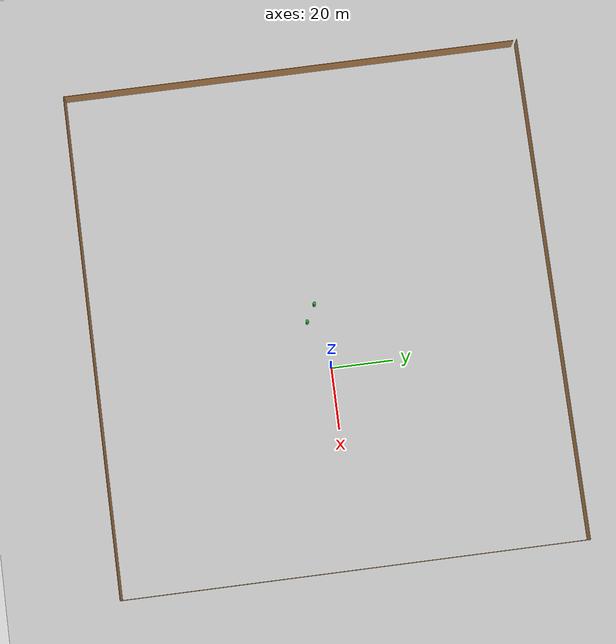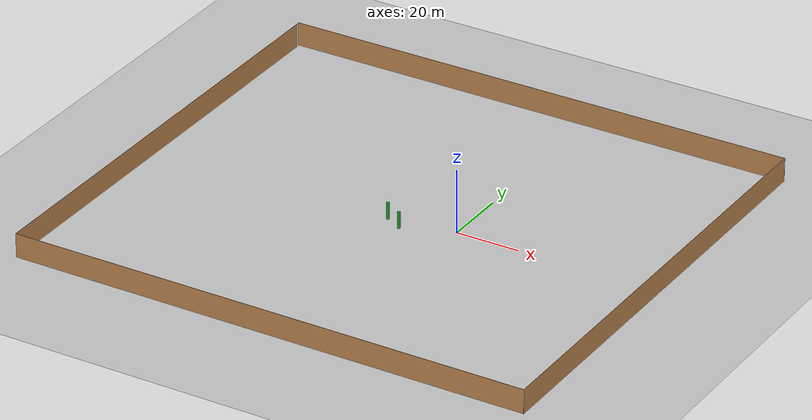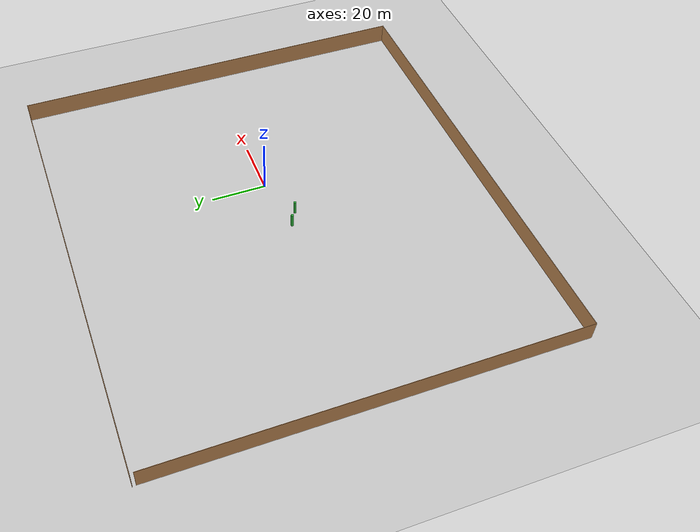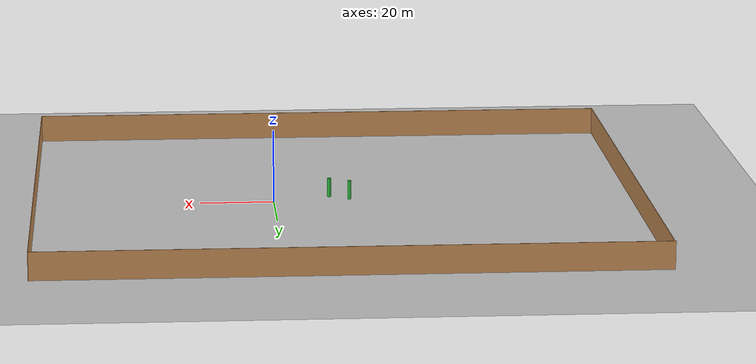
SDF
<sdf version="1.7">
 <world name="default">
  <model name="ground_plane">
   <static>1</static>
   <link name="link">
    <collision name="collision">
     <geometry><plane><normal>0 0 1</normal><size>100 100</size></plane></geometry>
     <surface>
      <contact><collide_bitmask>65535</collide_bitmask></contact>
      <friction><ode><mu>100</mu><mu2>50</mu2></ode></friction>
     </surface>
    </collision>
    <visual name="visual">
     <cast_shadows>0</cast_shadows>
     <geometry><plane><normal>0 0 1</normal><size>100 100</size></plane></geometry>
     <material>
      <script><uri>file://media/materials/scripts/gazebo.material</uri><name>Gazebo/Grey</name></script>
     </material>
    </visual>
   </link>
  </model>
  <model name="unit_cylinder_green_2_clone_0">
   <link name="link">
    <inertial>
     <mass>1</mass>
     <inertia><ixx>0.145833</ixx><ixy>0</ixy><ixz>0</ixz><iyy>0.145833</iyy><iyz>0</iyz><izz>0.125</izz></inertia>
    </inertial>
    <visual name="visual">
     <geometry><cylinder><radius>0.5</radius><length>10</length></cylinder></geometry>
     <material>
      <script><name>Gazebo/Green</name><uri>file://media/materials/scripts/gazebo.material</uri></script>
      <shader type="pixel"><normal_map>__default__</normal_map></shader>
      <ambient>0 1 0.3 1</ambient>
      <diffuse>0.7 0.7 0.7 1</diffuse>
      <specular>0.01 0.01 0.01 1</specular>
      <emissive>0 0 0 1</emissive>
     </material>
    </visual>
    <collision name="collision">
     <geometry><cylinder><radius>0.5</radius><length>5</length></cylinder></geometry>
     <surface>
      <friction>
       <ode><mu>1</mu><mu2>1</mu2><fdir1>0 0 0</fdir1><slip1>0</slip1><slip2>0</slip2></ode>
       <torsional>
        <coefficient>1</coefficient>
        <patch_radius>0</patch_radius>
        <surface_radius>0</surface_radius>
        <use_patch_radius>1</use_patch_radius>
        <ode><slip>0</slip></ode>
       </torsional>
      </friction>
      <bounce><restitution_coefficient>0</restitution_coefficient><threshold>1e+06</threshold></bounce>
      <contact>
       <collide_without_contact>0</collide_without_contact>
       <collide_without_contact_bitmask>1</collide_without_contact_bitmask>
       <collide_bitmask>1</collide_bitmask>
       <ode>
        <soft_cfm>0</soft_cfm>
        <soft_erp>0.2</soft_erp>
        <kp>1e+13</kp>
        <kd>1</kd>
        <max_vel>0.01</max_vel>
        <min_depth>0</min_depth>
       </ode>
       <bullet>
        <split_impulse>1</split_impulse>
        <split_impulse_penetration_threshold>-0.01</split_impulse_penetration_threshold>
        <soft_cfm>0</soft_cfm>
        <soft_erp>0.2</soft_erp>
        <kp>1e+13</kp>
        <kd>1</kd>
       </bullet>
      </contact>
     </surface>
    </collision>
   </link>
   <static>1</static>
   <pose>-15.5271 -5.75349 0 0 -0 0</pose>
  </model>
  <model name="unit_cylinder_green_2_clone_1">
   <link name="link">
    <inertial>
     <mass>1</mass>
     <inertia><ixx>0.145833</ixx><ixy>0</ixy><ixz>0</ixz><iyy>0.145833</iyy><iyz>0</iyz><izz>0.125</izz></inertia>
    </inertial>
    <visual name="visual">
     <geometry><cylinder><radius>0.5</radius><length>10</length></cylinder></geometry>
     <material>
      <script><name>Gazebo/Green</name><uri>file://media/materials/scripts/gazebo.material</uri></script>
      <shader type="pixel"><normal_map>__default__</normal_map></shader>
      <ambient>0 1 0.3 1</ambient>
      <diffuse>0.7 0.7 0.7 1</diffuse>
      <specular>0.01 0.01 0.01 1</specular>
      <emissive>0 0 0 1</emissive>
     </material>
    </visual>
    <collision name="collision">
     <geometry><cylinder><radius>0.5</radius><length>5</length></cylinder></geometry>
     <surface>
      <friction>
       <ode><mu>1</mu><mu2>1</mu2><fdir1>0 0 0</fdir1><slip1>0</slip1><slip2>0</slip2></ode>
       <torsional>
        <coefficient>1</coefficient>
        <patch_radius>0</patch_radius>
        <surface_radius>0</surface_radius>
        <use_patch_radius>1</use_patch_radius>
        <ode><slip>0</slip></ode>
       </torsional>
      </friction>
      <bounce><restitution_coefficient>0</restitution_coefficient><threshold>1e+06</threshold></bounce>
      <contact>
       <collide_without_contact>0</collide_without_contact>
       <collide_without_contact_bitmask>1</collide_without_contact_bitmask>
       <collide_bitmask>1</collide_bitmask>
       <ode>
        <soft_cfm>0</soft_cfm>
        <soft_erp>0.2</soft_erp>
        <kp>1e+13</kp>
        <kd>1</kd>
        <max_vel>0.01</max_vel>
        <min_depth>0</min_depth>
       </ode>
       <bullet>
        <split_impulse>1</split_impulse>
        <split_impulse_penetration_threshold>-0.01</split_impulse_penetration_threshold>
        <soft_cfm>0</soft_cfm>
        <soft_erp>0.2</soft_erp>
        <kp>1e+13</kp>
        <kd>1</kd>
       </bullet>
      </contact>
     </surface>
    </collision>
   </link>
   <static>1</static>
   <pose>-20.9276 -2.72984 0 0 -0 0</pose>
  </model>
  <model name="Untitled">
   <pose>-16.7345 -0.621261 0 0 -0 0</pose>
   <link name="Wall_3">
    <collision name="Wall_3_Collision">
     <geometry><box><size>147.5 0.15 7.5</size></box></geometry>
     <pose>0 0 3.75 0 -0 0</pose>
    </collision>
    <visual name="Wall_3_Visual">
     <pose>0 0 3.75 0 -0 0</pose>
     <geometry><box><size>147.5 0.15 7.5</size></box></geometry>
     <material>
      <script><uri>file://media/materials/scripts/gazebo.material</uri><name>Gazebo/Wood</name></script>
      <ambient>1 1 1 1</ambient>
     </material>
     <meta><layer>0</layer></meta>
    </visual>
    <pose>-81.3 -0.624998 0 0 -0 -1.5708</pose>
   </link>
   <link name="Wall_4">
    <collision name="Wall_4_Collision">
     <geometry><box><size>163 0.15 7.5</size></box></geometry>
     <pose>0 0 3.75 0 -0 0</pose>
    </collision>
    <visual name="Wall_4_Visual">
     <pose>0 0 3.75 0 -0 0</pose>
     <geometry><box><size>163 0.15 7.5</size></box></geometry>
     <material>
      <script><uri>file://media/materials/scripts/gazebo.material</uri><name>Gazebo/Wood</name></script>
      <ambient>1 1 1 1</ambient>
     </material>
     <meta><layer>0</layer></meta>
    </visual>
    <pose>0.124992 -74.3 0 0 -0 0</pose>
   </link>
   <link name="Wall_5">
    <collision name="Wall_5_Collision">
     <geometry><box><size>148.75 0.15 7.5</size></box></geometry>
     <pose>0 0 3.75 0 -0 0</pose>
    </collision>
    <visual name="Wall_5_Visual">
     <pose>0 0 3.75 0 -0 0</pose>
     <geometry><box><size>148.75 0.15 7.5</size></box></geometry>
     <material>
      <script><uri>file://media/materials/scripts/gazebo.material</uri><name>Gazebo/Wood</name></script>
      <ambient>1 1 1 1</ambient>
     </material>
     <meta><layer>0</layer></meta>
    </visual>
    <pose>81.55 2e-06 0 0 -0 1.5708</pose>
   </link>
   <link name="Wall_6">
    <collision name="Wall_6_Collision">
     <geometry><box><size>163.25 0.15 7.5</size></box></geometry>
     <pose>0 0 3.75 0 -0 0</pose>
    </collision>
    <visual name="Wall_6_Visual">
     <pose>0 0 3.75 0 -0 0</pose>
     <geometry><box><size>163.25 0.15 7.5</size></box></geometry>
     <material>
      <script><uri>file://media/materials/scripts/gazebo.material</uri><name>Gazebo/Wood</name></script>
      <ambient>1 1 1 1</ambient>
     </material>
     <meta><layer>0</layer></meta>
    </visual>
    <pose>-8e-06 74.3 0 0 -0 3.14159</pose>
   </link>
   <static>1</static>
  </model>
 </world>
</sdf>
